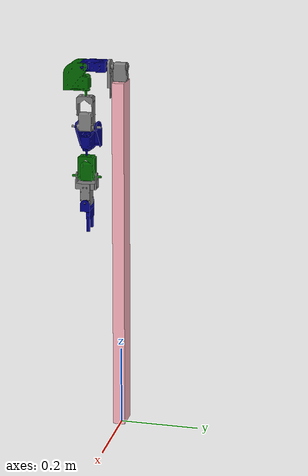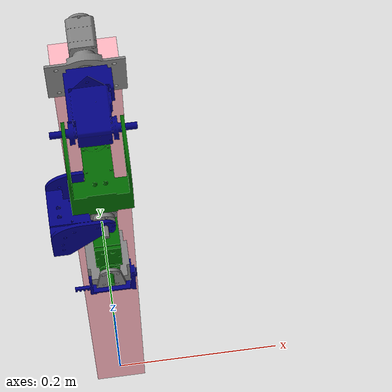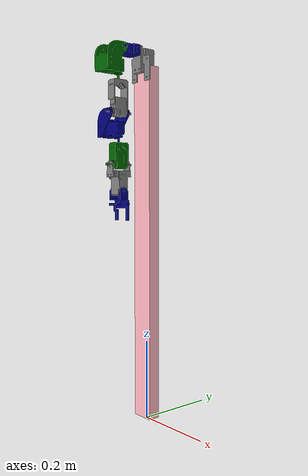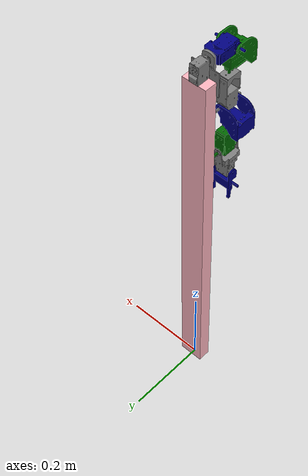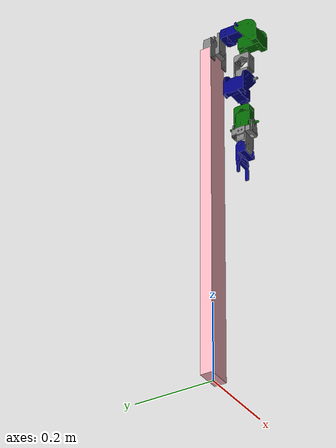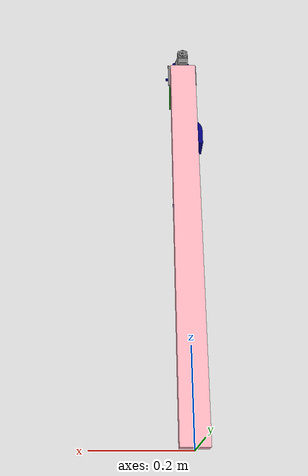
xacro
<?xml version="1.0" encoding="utf-8"?>
<robot xmlns:xacro="http://www.ros.org/wiki/xacro" name="poc_v2">

  <material name="grey">
      <color rgba="0.5 0.5 0.5 1" />
  </material>

  <material name="blue">
      <color rgba="0 0 0.5 1" />
  </material>

  <material name="green">
      <color rgba="0 0.4 0 1" />
  </material>

  <!-- Torso / base box -->
  <link name="torso_link">
    <inertial>
      <origin xyz="0 0 0.45" rpy="0 0 0"/>
      <mass value="25"/>
      <inertia
        ixx="0.2" ixy="0.0" ixz="0.0"
        iyy="0.2" iyz="0.0"
        izz="0.2"/>
    </inertial>

    <visual>
      <origin xyz="0 0 0.45" rpy="0 0 0"/>
      <geometry>
        <!-- size = X Y Z -->
        <box size="0.06 0.03 0.89"/>
      </geometry>
      <material name="torso_color">
        <color rgba="1 0.71 0.75 1"/>
      </material>
    </visual>

    <collision>
      <origin xyz="0 0 0.45" rpy="0 0 0"/>
      <geometry>
        <box size="0.06 0.03 0.89"/>
      </geometry>
    </collision>
  </link>

  <link
    name="shoulder_base_link">
    <inertial>
      <origin
        xyz="9.7487E-05 -0.0077102 -0.018086"
        rpy="0 0 0" />
      <mass
        value="0.065158" />
      <inertia
        ixx="1.3277E-05"
        ixy="3.3229E-10"
        ixz="4.3851E-09"
        iyy="1.8778E-05"
        iyz="2.5265E-07"
        izz="7.015E-06" />
    </inertial>
    <visual>
      <origin
        xyz="0 0 0"
        rpy="0 0 0" />
      <geometry>
        <mesh
          filename="package://poc_v2/meshes/shoulder_base_link.STL" />
      </geometry>
      <material name="grey"/>
    </visual>
    <collision>
      <origin
        xyz="0 0 0"
        rpy="0 0 0" />
      <geometry>
        <mesh
          filename="package://poc_v2/meshes/shoulder_base_link.STL" />
      </geometry>
    </collision>
  </link>

  <!-- torso -> shoulder_base_link fixed -->
  <joint name="torso_to_shoulder_base" type="fixed">
    <parent link="torso_link"/>
    <child link="shoulder_base_link"/>
    <!-- adjust this offset to place your arm on top of torso -->
    <origin xyz="0 0 0.93" rpy="0 0 0"/>
  </joint>

  <link
    name="shoulder_pitch_link">
    <inertial>
      <origin
        xyz="-4.3944E-05 -0.027448 -0.00011001"
        rpy="0 0 0" />
      <mass
        value="0.058226" />
      <inertia
        ixx="9.1701E-06"
        ixy="4.611E-09"
        ixz="-3.6339E-10"
        iyy="4.5864E-06"
        iyz="-1.102E-09"
        izz="8.3506E-06" />
    </inertial>
    <visual>
      <origin
        xyz="0 0 0"
        rpy="0 0 0" />
      <geometry>
        <mesh
          filename="package://poc_v2/meshes/shoulder_pitch_link.STL" />
      </geometry>
      <material name="blue"/>
    </visual>
    <collision>
      <origin
        xyz="0 0 0"
        rpy="0 0 0" />
      <geometry>
        <mesh
          filename="package://poc_v2/meshes/shoulder_pitch_link.STL" />
      </geometry>
    </collision>
  </link>
  <joint
    name="shoulder_pitch_joint"
    type="revolute">
    <origin
      xyz="0 -0.039425 0"
      rpy="0 0 0" />
    <parent
      link="shoulder_base_link" />
    <child
      link="shoulder_pitch_link" />
    <axis
      xyz="0 -1 0" />
    <limit
      lower="-1.5708"
      upper="1.5708"
      effort="3"
      velocity="4.7124" />
  </joint>
  <link
    name="shoulder_yaw_link">
    <inertial>
      <origin
        xyz="4.1777E-05 -0.022349 -0.037122"
        rpy="0 0 0" />
      <mass
        value="0.07816" />
      <inertia
        ixx="1.7538E-05"
        ixy="1.1171E-09"
        ixz="-6.0564E-10"
        iyy="1.2384E-05"
        iyz="-2.1123E-06"
        izz="1.5499E-05" />
    </inertial>
    <visual>
      <origin
        xyz="0 0 0"
        rpy="0 0 0" />
      <geometry>
        <mesh
          filename="package://poc_v2/meshes/shoulder_yaw_link.STL" />
      </geometry>
      <material name="green"/>
    </visual>
    <collision>
      <origin
        xyz="0 0 0"
        rpy="0 0 0" />
      <geometry>
        <mesh
          filename="package://poc_v2/meshes/shoulder_yaw_link.STL" />
      </geometry>
    </collision>
  </link>
  <joint
    name="shoulder_yaw_joint"
    type="revolute">
    <origin
      xyz="0 -0.047424 0"
      rpy="0 0 0" />
    <parent
      link="shoulder_pitch_link" />
    <child
      link="shoulder_yaw_link" />
    <axis
      xyz="-1 0 0" />
    <limit
      lower="-1.5708"
      upper="1.5708"
      effort="3"
      velocity="4.7124" />
  </joint>
  <link
    name="shoulder_roll_link">
    <inertial>
      <origin
        xyz="0.00010503 -6.0033E-06 -0.046163"
        rpy="0 0 0" />
      <mass
        value="0.062029" />
      <inertia
        ixx="1.0247E-05"
        ixy="-7.3826E-10"
        ixz="1.2386E-09"
        iyy="1.1268E-05"
        iyz="-4.5936E-09"
        izz="4.7933E-06" />
    </inertial>
    <visual>
      <origin
        xyz="0 0 0"
        rpy="0 0 0" />
      <geometry>
        <mesh
          filename="package://poc_v2/meshes/shoulder_roll_link.STL" />
      </geometry>
      <material name="grey"/>
    </visual>
    <collision>
      <origin
        xyz="0 0 0"
        rpy="0 0 0" />
      <geometry>
        <mesh
          filename="package://poc_v2/meshes/shoulder_roll_link.STL" />
      </geometry>
    </collision>
  </link>
  <joint
    name="shoulder_roll_joint"
    type="revolute">
    <origin
      xyz="0.000125 0 -0.08105"
      rpy="0 0 0" />
    <parent
      link="shoulder_yaw_link" />
    <child
      link="shoulder_roll_link" />
    <axis
      xyz="0 0 -1" />
    <limit
      lower="-3.1416"
      upper="3.1416"
      effort="3"
      velocity="4.7124" />
  </joint>
  <link
    name="elbow_pitch_link">
    <inertial>
      <origin
        xyz="-0.022349 -4.1658E-05 -0.03471"
        rpy="0 0 0" />
      <mass
        value="0.07816" />
      <inertia
        ixx="1.2384E-05"
        ixy="-1.0321E-09"
        ixz="-2.112E-06"
        iyy="1.7538E-05"
        iyz="6.7704E-10"
        izz="1.5499E-05" />
    </inertial>
    <visual>
      <origin
        xyz="0 0 0"
        rpy="0 0 0" />
      <geometry>
        <mesh
          filename="package://poc_v2/meshes/elbow_pitch_link.STL" />
      </geometry>
      <material name="blue"/>
    </visual>
    <collision>
      <origin
        xyz="0 0 0"
        rpy="0 0 0" />
      <geometry>
        <mesh
          filename="package://poc_v2/meshes/elbow_pitch_link.STL" />
      </geometry>
    </collision>
  </link>
  <joint
    name="elbow_pitch_joint"
    type="revolute">
    <origin
      xyz="0 0 -0.072424"
      rpy="0 0 0" />
    <parent
      link="shoulder_roll_link" />
    <child
      link="elbow_pitch_link" />
    <axis
      xyz="0 1 0" />
    <limit
      lower="-1.5708"
      upper="1.5708"
      effort="3"
      velocity="4.7124" />
  </joint>
  <link
    name="wrist_roll_link">
    <inertial>
      <origin
        xyz="-0.0001094 0.00049455 -0.027472"
        rpy="0 0 0" />
      <mass
        value="0.059835" />
      <inertia
        ixx="8.7489E-06"
        ixy="-2.3214E-10"
        ixz="-1.1318E-09"
        iyy="9.6573E-06"
        iyz="4.6966E-09"
        izz="4.6776E-06" />
    </inertial>
    <visual>
      <origin
        xyz="0 0 0"
        rpy="0 0 0" />
      <geometry>
        <mesh
          filename="package://poc_v2/meshes/wrist_roll_link.STL" />
      </geometry>
      <material name="green"/>
    </visual>
    <collision>
      <origin
        xyz="0 0 0"
        rpy="0 0 0" />
      <geometry>
        <mesh
          filename="package://poc_v2/meshes/wrist_roll_link.STL" />
      </geometry>
    </collision>
  </link>
  <joint
    name="wrist_roll_joint"
    type="revolute">
    <origin
      xyz="0 -0.000125 -0.07805"
      rpy="0 0 0" />
    <parent
      link="elbow_pitch_link" />
    <child
      link="wrist_roll_link" />
    <axis
      xyz="0 0 -1" />
    <limit
      lower="-3.1416"
      upper="3.1416"
      effort="3"
      velocity="4.7124" />
  </joint>
  <link
    name="wrist_pitch_link">
    <inertial>
      <origin
        xyz="-1.2164E-05 -0.00021517 -0.040822"
        rpy="0 0 0" />
      <mass
        value="0.065136" />
      <inertia
        ixx="1.2184E-05"
        ixy="3.7721E-10"
        ixz="-3.5858E-09"
        iyy="9.7713E-06"
        iyz="-1.0653E-09"
        izz="7.7058E-06" />
    </inertial>
    <visual>
      <origin
        xyz="0 0 0"
        rpy="0 0 0" />
      <geometry>
        <mesh
          filename="package://poc_v2/meshes/wrist_pitch_link.STL" />
      </geometry>
      <material name="grey"/>
    </visual>
    <collision>
      <origin
        xyz="0 0 0"
        rpy="0 0 0" />
      <geometry>
        <mesh
          filename="package://poc_v2/meshes/wrist_pitch_link.STL" />
      </geometry>
    </collision>
  </link>
  <joint
    name="wrist_pitch_joint"
    type="revolute">
    <origin
      xyz="0 0 -0.047424"
      rpy="0 0 0" />
    <parent
      link="wrist_roll_link" />
    <child
      link="wrist_pitch_link" />
    <axis
      xyz="0 -1 0" />
    <limit
      lower="-1.5708"
      upper="1.5708"
      effort="3"
      velocity="4.7124" />
  </joint>

  <link
    name="wrist_yaw_link">
    <inertial>
      <origin
        xyz="-0.00134389225503382 0.00410515462928857 -0.0264402444455359"
        rpy="0 0 0" />
      <mass
        value="0.0153733484376505" />
      <inertia
        ixx="2.23369482968237E-06"
        ixy="-6.06138545788461E-10"
        ixz="3.24772205878924E-07"
        iyy="4.98261144688796E-06"
        iyz="4.19349180435978E-08"
        izz="3.59994172004044E-06" />
    </inertial>
    <visual>
      <origin
        xyz="0 0 0"
        rpy="0 0 0" />
      <geometry>
        <mesh
          filename="package://poc_v2/meshes/wrist_yaw_link.STL" />
      </geometry>
      <material name="blue"/>
    </visual>
    <collision>
      <origin
        xyz="0 0 0"
        rpy="0 0 0" />
      <geometry>
        <mesh
          filename="package://poc_v2/meshes/wrist_yaw_link.STL" />
      </geometry>
    </collision>
  </link>
  <joint
    name="wrist_yaw_joint"
    type="revolute">
    <origin
      xyz="0 -0.000125 -0.064924"
      rpy="0 0 0" />
    <parent
      link="wrist_pitch_link" />
    <child
      link="wrist_yaw_link" />
    <axis
      xyz="-1 0 0" />
    <limit
      lower="-1.5708"
      upper="1.5708"
      effort="3"
      velocity="4.7124" />
  </joint>

</robot>
